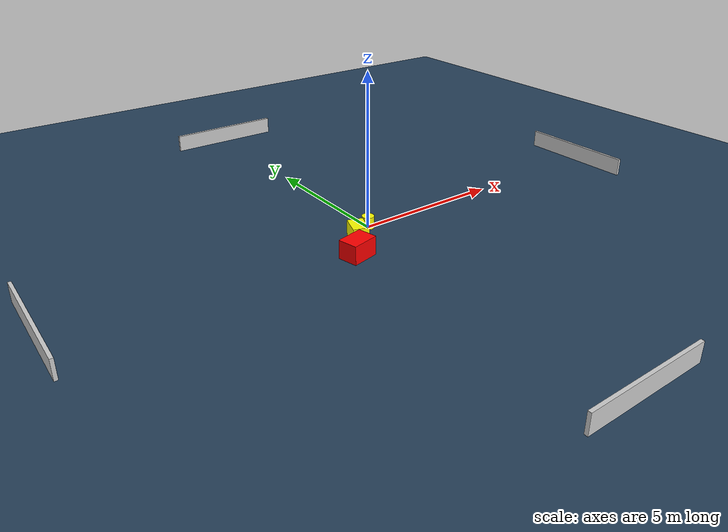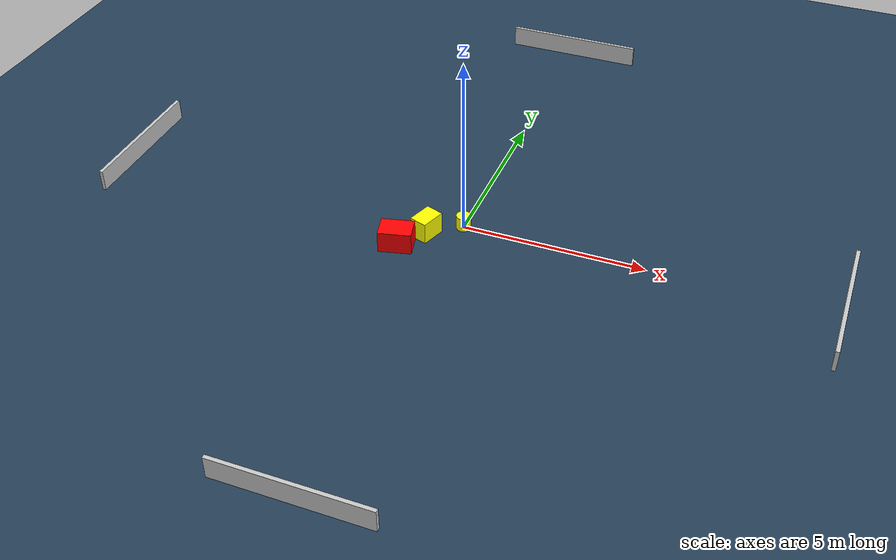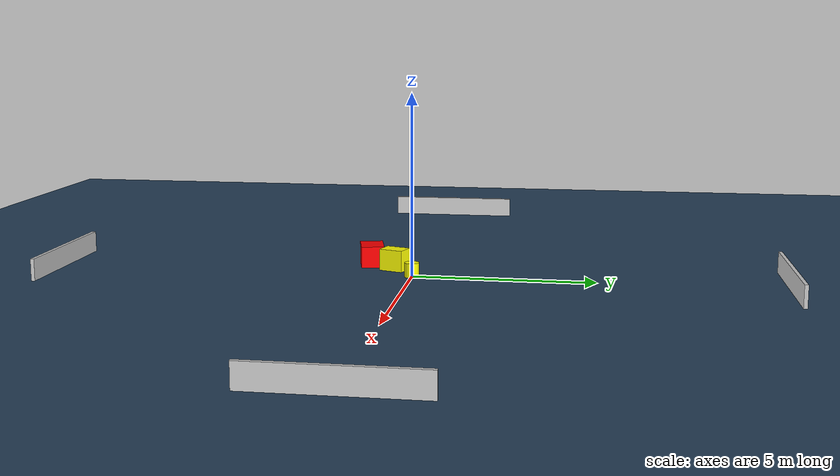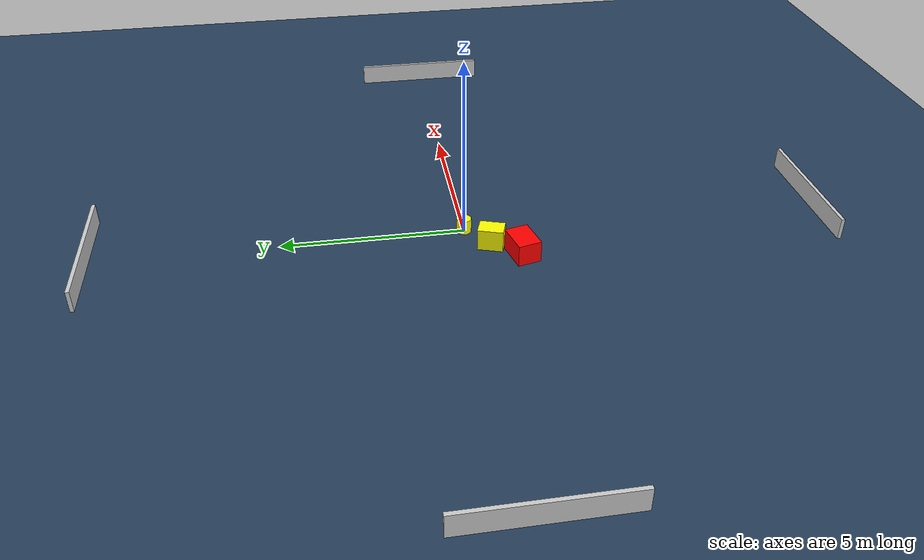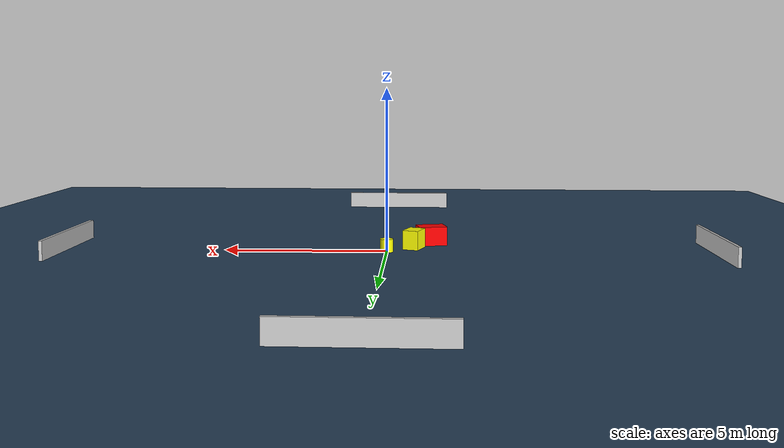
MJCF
<?xml version="1.0" ?>
<mujoco model="generated_environment">
  <option timestep="0.01" integrator="RK4" cone="elliptic"/>
  <default>
    <geom density="1"/>
  </default>
  <asset>
    <texture builtin="gradient" height="3072" name="skybox" rgb1="0.3 0.5 0.7" rgb2="0 0 0" type="skybox" width="512"/>
    <texture builtin="checker" height="300" name="groundplane" rgb1="0.2 0.3 0.4" rgb2="0.1 0.2 0.3" type="2d" width="300"/>
    <material name="groundplane" reflectance="0.2" texrepeat="5 5" texture="groundplane"/>
  </asset>
  <worldbody>
    <light dir="0 0 -1" directional="true" pos="0 0 1.5"/>
    <geom condim="3" friction="0.5 0.005 0.001" material="groundplane" name="floor" pos="0 0 0" size="0 0 0.05" type="plane"/>
    <body name="walls">
      <geom name="wall_1" condim="4" pos="-10.0 0.0 0.3" rgba="0.800000011920929 0.800000011920929 0.800000011920929 1.0" size="0.05 2.0 0.3" type="box"/>
      <geom name="wall_2" condim="4" pos="10.0 0.0 0.3" rgba="0.800000011920929 0.800000011920929 0.800000011920929 1.0" size="0.05 2.0 0.3" type="box"/>
      <geom name="wall_3" condim="4" pos="0.0 -10.0 0.3" rgba="0.800000011920929 0.800000011920929 0.800000011920929 1.0" size="2.0 0.05 0.3" type="box"/>
      <geom name="wall_4" condim="4" pos="0.0 10.0 0.3" rgba="0.800000011920929 0.800000011920929 0.800000011920929 1.0" size="2.0 0.05 0.3" type="box"/>
    </body>
    <body name="robot">
      <joint name="joint_x" type="slide" pos="0 0 0" axis="1 0 0"/>
      <joint name="joint_y" type="slide" pos="0 0 0" axis="0 1 0"/>
      <geom name="robot" type="cylinder" pos="0.0 0.0 0.2" size="0.2 0.2 0.0" mass="5.0" friction="1.0 0.005 0.0001" condim="4" rgba="1.0 1.0 0.0 1.0"/>
    </body>
    <body name="obstacle_1_movable">
      <geom name="obstacle_1_movable" condim="4" pos="-0.8223986426557244 -0.6122443473701975 0.3" euler="0 0 71.18733642965287" friction="0.0 0.005 0.001" rgba="1.0 1.0 0.0 1.0" size="0.34505704569995865 0.2484265166458594 0.3" type="box" mass="0.1"/>
      <joint type="free"/>
    </body>
    <body name="obstacle_2_static">
      <geom name="obstacle_2_static" condim="4" pos="-1.3708563820963435 -1.3507757603302997 0.3" euler="0 0 193.25994520679927" friction="0.0 0.005 0.001" rgba="1.0 0.0 0.0 1.0" size="0.44654194794726576 0.3231561044954433 0.3" type="box"/>
    </body>
  </worldbody>
  <actuator>
    <motor name="actuator_x" joint="joint_x" gear="1" ctrlrange="-1 1"/>
    <motor name="actuator_y" joint="joint_y" gear="1" ctrlrange="-1 1"/>
  </actuator>
</mujoco>
